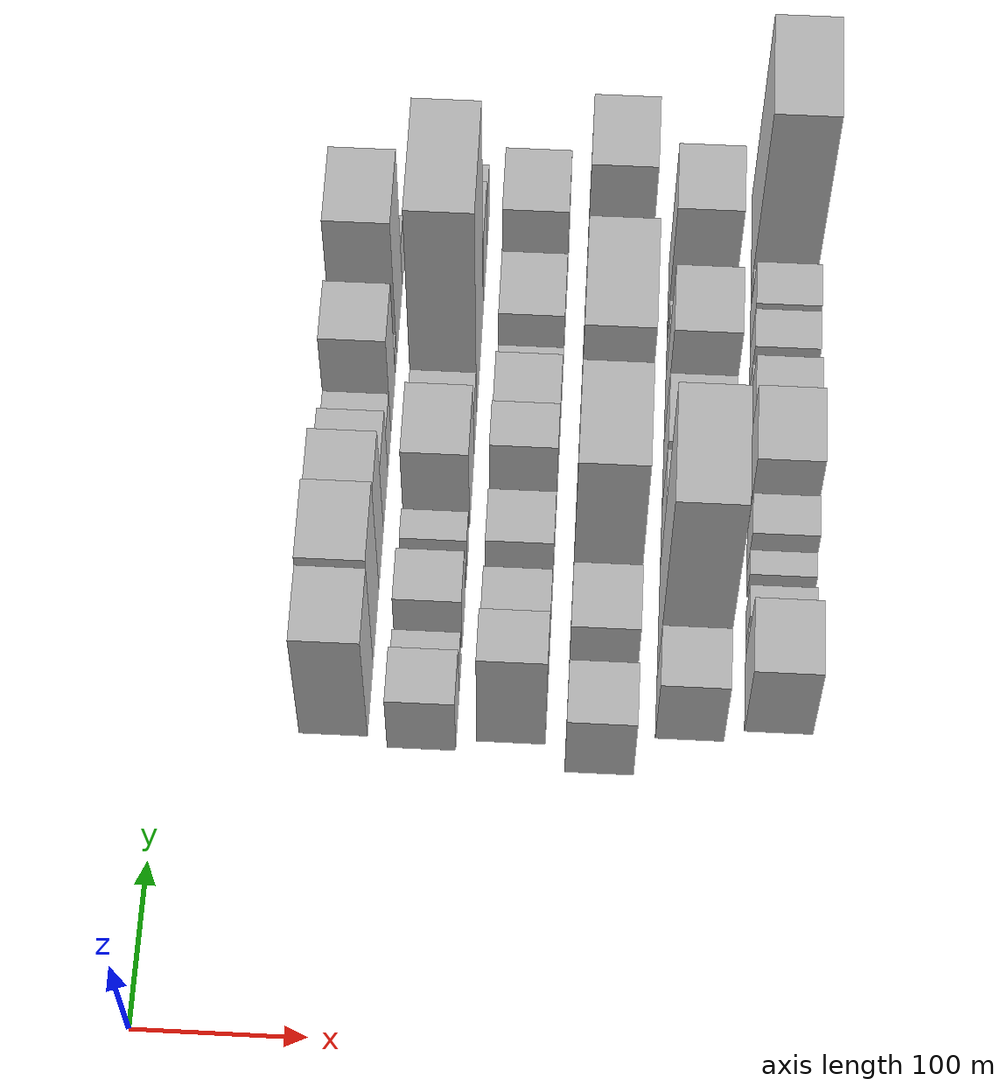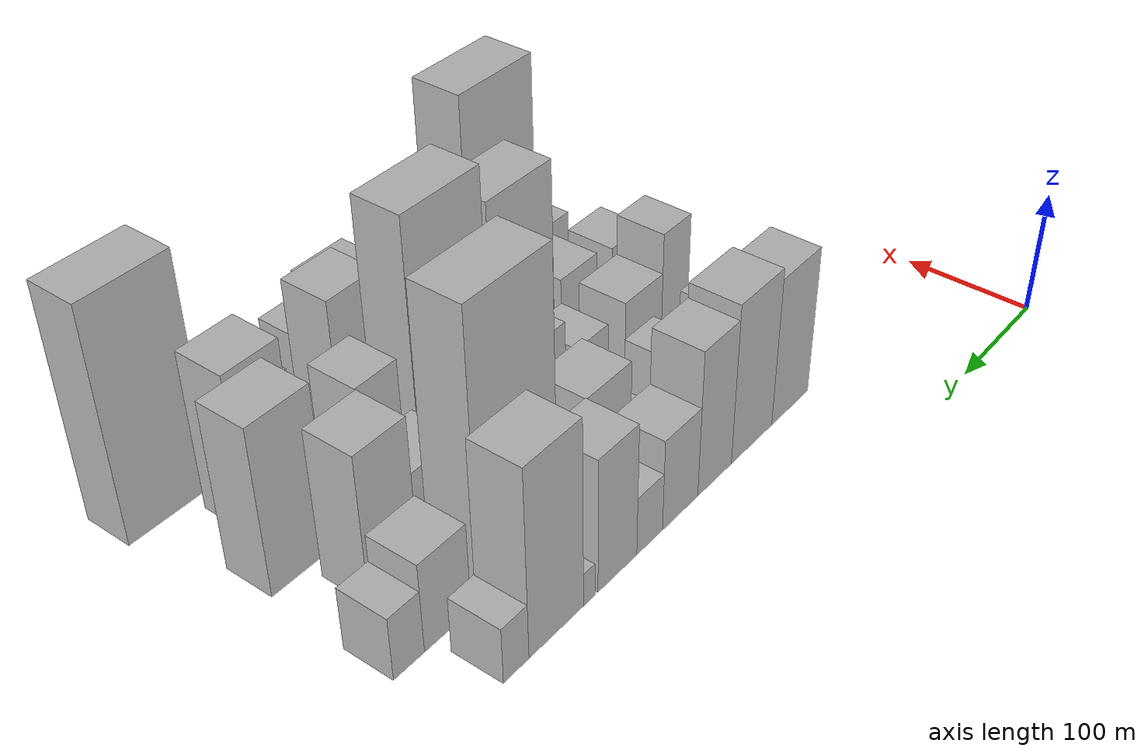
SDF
<sdf version="1.6">
 <world name="default">
  <model name="building_29">
   <static>1</static>
   <pose>100.0000 208.4547 0 0.000000 0.000000 0.000000</pose>
   <link name="link">
    <pose>0 0 61.50 0 0 0</pose>
    <collision name="collision"><geometry><box><size>40.0000 46.8915 123.0000</size></box></geometry></collision>
    <visual name="visual">
     <cast_shadows>0</cast_shadows>
     <geometry><box><size>40.0000 46.8915 123.0000</size></box></geometry>
     <material>
      <script>
       <uri>model://HANNAS_wall/materials/scripts</uri>
       <uri>model://HANNAS_wall/materials/textures</uri>
       <name>vrc/HANNAS_wall</name>
      </script>
     </material>
    </visual>
   </link>
  </model>
  <model name="building_30">
   <static>1</static>
   <pose>100.0000 256.9549 0 0.000000 0.000000 0.000000</pose>
   <link name="link">
    <pose>0 0 66.00 0 0 0</pose>
    <collision name="collision"><geometry><box><size>40.0000 50.1088 132.0000</size></box></geometry></collision>
    <visual name="visual">
     <cast_shadows>0</cast_shadows>
     <geometry><box><size>40.0000 50.1088 132.0000</size></box></geometry>
     <material>
      <script>
       <uri>model://HANNAS_wall/materials/scripts</uri>
       <uri>model://HANNAS_wall/materials/textures</uri>
       <name>vrc/HANNAS_wall</name>
      </script>
     </material>
    </visual>
   </link>
  </model>
  <model name="building_31">
   <static>1</static>
   <pose>100.0000 301.8490 0 0.000000 0.000000 0.000000</pose>
   <link name="link">
    <pose>0 0 60.00 0 0 0</pose>
    <collision name="collision"><geometry><box><size>40.0000 39.6795 120.0000</size></box></geometry></collision>
    <visual name="visual">
     <cast_shadows>0</cast_shadows>
     <geometry><box><size>40.0000 39.6795 120.0000</size></box></geometry>
     <material>
      <script>
       <uri>model://HANNAS_wall/materials/scripts</uri>
       <uri>model://HANNAS_wall/materials/textures</uri>
       <name>vrc/HANNAS_wall</name>
      </script>
     </material>
    </visual>
   </link>
  </model>
  <model name="building_32">
   <static>1</static>
   <pose>100.0000 341.5199 0 0.000000 0.000000 0.000000</pose>
   <link name="link">
    <pose>0 0 37.50 0 0 0</pose>
    <collision name="collision"><geometry><box><size>40.0000 39.6623 75.0000</size></box></geometry></collision>
    <visual name="visual">
     <cast_shadows>0</cast_shadows>
     <geometry><box><size>40.0000 39.6623 75.0000</size></box></geometry>
     <material>
      <script>
       <uri>model://HANNAS_wall/materials/scripts</uri>
       <uri>model://HANNAS_wall/materials/textures</uri>
       <name>vrc/HANNAS_wall</name>
      </script>
     </material>
    </visual>
   </link>
  </model>
  <model name="building_33">
   <static>1</static>
   <pose>100.0000 375.2627 0 0.000000 0.000000 0.000000</pose>
   <link name="link">
    <pose>0 0 24.00 0 0 0</pose>
    <collision name="collision"><geometry><box><size>40.0000 27.8233 48.0000</size></box></geometry></collision>
    <visual name="visual">
     <cast_shadows>0</cast_shadows>
     <geometry><box><size>40.0000 27.8233 48.0000</size></box></geometry>
     <material>
      <script>
       <uri>model://HANNAS_wall/materials/scripts</uri>
       <uri>model://HANNAS_wall/materials/textures</uri>
       <name>vrc/HANNAS_wall</name>
      </script>
     </material>
    </visual>
   </link>
  </model>
  <model name="building_34">
   <static>1</static>
   <pose>100.0000 409.2734 0 0.000000 0.000000 0.000000</pose>
   <link name="link">
    <pose>0 0 54.00 0 0 0</pose>
    <collision name="collision"><geometry><box><size>40.0000 40.1979 108.0000</size></box></geometry></collision>
    <visual name="visual">
     <cast_shadows>0</cast_shadows>
     <geometry><box><size>40.0000 40.1979 108.0000</size></box></geometry>
     <material>
      <script>
       <uri>model://HANNAS_wall/materials/scripts</uri>
       <uri>model://HANNAS_wall/materials/textures</uri>
       <name>vrc/HANNAS_wall</name>
      </script>
     </material>
    </visual>
   </link>
  </model>
  <model name="building_35">
   <static>1</static>
   <pose>100.0000 438.1028 0 0.000000 0.000000 0.000000</pose>
   <link name="link">
    <pose>0 0 13.50 0 0 0</pose>
    <collision name="collision"><geometry><box><size>40.0000 11.4611 27.0000</size></box></geometry></collision>
    <visual name="visual">
     <cast_shadows>0</cast_shadows>
     <geometry><box><size>40.0000 11.4611 27.0000</size></box></geometry>
     <material>
      <script>
       <uri>model://HANNAS_wall/materials/scripts</uri>
       <uri>model://HANNAS_wall/materials/textures</uri>
       <name>vrc/HANNAS_wall</name>
      </script>
     </material>
    </visual>
   </link>
  </model>
  <model name="building_36">
   <static>1</static>
   <pose>100.0000 470.0060 0 0.000000 0.000000 0.000000</pose>
   <link name="link">
    <pose>0 0 75.00 0 0 0</pose>
    <collision name="collision"><geometry><box><size>40.0000 52.3452 150.0000</size></box></geometry></collision>
    <visual name="visual">
     <cast_shadows>0</cast_shadows>
     <geometry><box><size>40.0000 52.3452 150.0000</size></box></geometry>
     <material>
      <script>
       <uri>model://HANNAS_wall/materials/scripts</uri>
       <uri>model://HANNAS_wall/materials/textures</uri>
       <name>vrc/HANNAS_wall</name>
      </script>
     </material>
    </visual>
   </link>
  </model>
  <model name="building_37">
   <static>1</static>
   <pose>100.0000 507.8916 0 0.000000 0.000000 0.000000</pose>
   <link name="link">
    <pose>0 0 22.50 0 0 0</pose>
    <collision name="collision"><geometry><box><size>40.0000 23.4261 45.0000</size></box></geometry></collision>
    <visual name="visual">
     <cast_shadows>0</cast_shadows>
     <geometry><box><size>40.0000 23.4261 45.0000</size></box></geometry>
     <material>
      <script>
       <uri>model://HANNAS_wall/materials/scripts</uri>
       <uri>model://HANNAS_wall/materials/textures</uri>
       <name>vrc/HANNAS_wall</name>
      </script>
     </material>
    </visual>
   </link>
  </model>
  <model name="building_78">
   <static>1</static>
   <pose>152.0000 195.8026 0 0.000000 0.000000 0.000000</pose>
   <link name="link">
    <pose>0 0 31.50 0 0 0</pose>
    <collision name="collision"><geometry><box><size>40.0000 34.5670 63.0000</size></box></geometry></collision>
    <visual name="visual">
     <cast_shadows>0</cast_shadows>
     <geometry><box><size>40.0000 34.5670 63.0000</size></box></geometry>
     <material>
      <script>
       <uri>model://HANNAS_wall/materials/scripts</uri>
       <uri>model://HANNAS_wall/materials/textures</uri>
       <name>vrc/HANNAS_wall</name>
      </script>
     </material>
    </visual>
   </link>
  </model>
  <model name="building_79">
   <static>1</static>
   <pose>152.0000 224.5980 0 0.000000 0.000000 0.000000</pose>
   <link name="link">
    <pose>0 0 19.50 0 0 0</pose>
    <collision name="collision"><geometry><box><size>40.0000 23.0237 39.0000</size></box></geometry></collision>
    <visual name="visual">
     <cast_shadows>0</cast_shadows>
     <geometry><box><size>40.0000 23.0237 39.0000</size></box></geometry>
     <material>
      <script>
       <uri>model://HANNAS_wall/materials/scripts</uri>
       <uri>model://HANNAS_wall/materials/textures</uri>
       <name>vrc/HANNAS_wall</name>
      </script>
     </material>
    </visual>
   </link>
  </model>
  <model name="building_80">
   <static>1</static>
   <pose>152.0000 261.7956 0 0.000000 0.000000 0.000000</pose>
   <link name="link">
    <pose>0 0 30.00 0 0 0</pose>
    <collision name="collision"><geometry><box><size>40.0000 33.3714 60.0000</size></box></geometry></collision>
    <visual name="visual">
     <cast_shadows>0</cast_shadows>
     <geometry><box><size>40.0000 33.3714 60.0000</size></box></geometry>
     <material>
      <script>
       <uri>model://HANNAS_wall/materials/scripts</uri>
       <uri>model://HANNAS_wall/materials/textures</uri>
       <name>vrc/HANNAS_wall</name>
      </script>
     </material>
    </visual>
   </link>
  </model>
  <model name="building_81">
   <static>1</static>
   <pose>152.0000 289.0990 0 0.000000 0.000000 0.000000</pose>
   <link name="link">
    <pose>0 0 10.50 0 0 0</pose>
    <collision name="collision"><geometry><box><size>40.0000 9.2353 21.0000</size></box></geometry></collision>
    <visual name="visual">
     <cast_shadows>0</cast_shadows>
     <geometry><box><size>40.0000 9.2353 21.0000</size></box></geometry>
     <material>
      <script>
       <uri>model://HANNAS_wall/materials/scripts</uri>
       <uri>model://HANNAS_wall/materials/textures</uri>
       <name>vrc/HANNAS_wall</name>
      </script>
     </material>
    </visual>
   </link>
  </model>
  <model name="building_82">
   <static>1</static>
   <pose>152.0000 307.6373 0 0.000000 0.000000 0.000000</pose>
   <link name="link">
    <pose>0 0 18.00 0 0 0</pose>
    <collision name="collision"><geometry><box><size>40.0000 19.8414 36.0000</size></box></geometry></collision>
    <visual name="visual">
     <cast_shadows>0</cast_shadows>
     <geometry><box><size>40.0000 19.8414 36.0000</size></box></geometry>
     <material>
      <script>
       <uri>model://HANNAS_wall/materials/scripts</uri>
       <uri>model://HANNAS_wall/materials/textures</uri>
       <name>vrc/HANNAS_wall</name>
      </script>
     </material>
    </visual>
   </link>
  </model>
  <model name="building_83">
   <static>1</static>
   <pose>152.0000 349.2257 0 0.000000 0.000000 0.000000</pose>
   <link name="link">
    <pose>0 0 45.00 0 0 0</pose>
    <collision name="collision"><geometry><box><size>40.0000 47.3353 90.0000</size></box></geometry></collision>
    <visual name="visual">
     <cast_shadows>0</cast_shadows>
     <geometry><box><size>40.0000 47.3353 90.0000</size></box></geometry>
     <material>
      <script>
       <uri>model://HANNAS_wall/materials/scripts</uri>
       <uri>model://HANNAS_wall/materials/textures</uri>
       <name>vrc/HANNAS_wall</name>
      </script>
     </material>
    </visual>
   </link>
  </model>
  <model name="building_84">
   <static>1</static>
   <pose>152.0000 388.0478 0 0.000000 0.000000 0.000000</pose>
   <link name="link">
    <pose>0 0 27.00 0 0 0</pose>
    <collision name="collision"><geometry><box><size>40.0000 30.3090 54.0000</size></box></geometry></collision>
    <visual name="visual">
     <cast_shadows>0</cast_shadows>
     <geometry><box><size>40.0000 30.3090 54.0000</size></box></geometry>
     <material>
      <script>
       <uri>model://HANNAS_wall/materials/scripts</uri>
       <uri>model://HANNAS_wall/materials/textures</uri>
       <name>vrc/HANNAS_wall</name>
      </script>
     </material>
    </visual>
   </link>
  </model>
  <model name="building_85">
   <static>1</static>
   <pose>152.0000 441.4528 0 0.000000 0.000000 0.000000</pose>
   <link name="link">
    <pose>0 0 112.50 0 0 0</pose>
    <collision name="collision"><geometry><box><size>40.0000 76.5010 225.0000</size></box></geometry></collision>
    <visual name="visual">
     <cast_shadows>0</cast_shadows>
     <geometry><box><size>40.0000 76.5010 225.0000</size></box></geometry>
     <material>
      <script>
       <uri>model://HANNAS_wall/materials/scripts</uri>
       <uri>model://HANNAS_wall/materials/textures</uri>
       <name>vrc/HANNAS_wall</name>
      </script>
     </material>
    </visual>
   </link>
  </model>
  <model name="building_86">
   <static>1</static>
   <pose>152.0000 508.6793 0 0.000000 0.000000 0.000000</pose>
   <link name="link">
    <pose>0 0 36.00 0 0 0</pose>
    <collision name="collision"><geometry><box><size>40.0000 41.9520 72.0000</size></box></geometry></collision>
    <visual name="visual">
     <cast_shadows>0</cast_shadows>
     <geometry><box><size>40.0000 41.9520 72.0000</size></box></geometry>
     <material>
      <script>
       <uri>model://HANNAS_wall/materials/scripts</uri>
       <uri>model://HANNAS_wall/materials/textures</uri>
       <name>vrc/HANNAS_wall</name>
      </script>
     </material>
    </visual>
   </link>
  </model>
  <model name="building_87">
   <static>1</static>
   <pose>152.0000 543.0569 0 0.000000 0.000000 0.000000</pose>
   <link name="link">
    <pose>0 0 25.50 0 0 0</pose>
    <collision name="collision"><geometry><box><size>40.0000 26.8033 51.0000</size></box></geometry></collision>
    <visual name="visual">
     <cast_shadows>0</cast_shadows>
     <geometry><box><size>40.0000 26.8033 51.0000</size></box></geometry>
     <material>
      <script>
       <uri>model://HANNAS_wall/materials/scripts</uri>
       <uri>model://HANNAS_wall/materials/textures</uri>
       <name>vrc/HANNAS_wall</name>
      </script>
     </material>
    </visual>
   </link>
  </model>
  <model name="building_130">
   <static>1</static>
   <pose>204.0000 201.4827 0 0.000000 0.000000 0.000000</pose>
   <link name="link">
    <pose>0 0 54.00 0 0 0</pose>
    <collision name="collision"><geometry><box><size>40.0000 32.6587 108.0000</size></box></geometry></collision>
    <visual name="visual">
     <cast_shadows>0</cast_shadows>
     <geometry><box><size>40.0000 32.6587 108.0000</size></box></geometry>
     <material>
      <script>
       <uri>model://HANNAS_wall/materials/scripts</uri>
       <uri>model://HANNAS_wall/materials/textures</uri>
       <name>vrc/HANNAS_wall</name>
      </script>
     </material>
    </visual>
   </link>
  </model>
  <model name="building_131">
   <static>1</static>
   <pose>204.0000 239.6755 0 0.000000 0.000000 0.000000</pose>
   <link name="link">
    <pose>0 0 37.50 0 0 0</pose>
    <collision name="collision"><geometry><box><size>40.0000 43.7267 75.0000</size></box></geometry></collision>
    <visual name="visual">
     <cast_shadows>0</cast_shadows>
     <geometry><box><size>40.0000 43.7267 75.0000</size></box></geometry>
     <material>
      <script>
       <uri>model://HANNAS_wall/materials/scripts</uri>
       <uri>model://HANNAS_wall/materials/textures</uri>
       <name>vrc/HANNAS_wall</name>
      </script>
     </material>
    </visual>
   </link>
  </model>
  <model name="building_132">
   <static>1</static>
   <pose>204.0000 273.3717 0 0.000000 0.000000 0.000000</pose>
   <link name="link">
    <pose>0 0 15.00 0 0 0</pose>
    <collision name="collision"><geometry><box><size>40.0000 15.6657 30.0000</size></box></geometry></collision>
    <visual name="visual">
     <cast_shadows>0</cast_shadows>
     <geometry><box><size>40.0000 15.6657 30.0000</size></box></geometry>
     <material>
      <script>
       <uri>model://HANNAS_wall/materials/scripts</uri>
       <uri>model://HANNAS_wall/materials/textures</uri>
       <name>vrc/HANNAS_wall</name>
      </script>
     </material>
    </visual>
   </link>
  </model>
  <model name="building_133">
   <static>1</static>
   <pose>204.0000 298.4647 0 0.000000 0.000000 0.000000</pose>
   <link name="link">
    <pose>0 0 34.50 0 0 0</pose>
    <collision name="collision"><geometry><box><size>40.0000 34.5203 69.0000</size></box></geometry></collision>
    <visual name="visual">
     <cast_shadows>0</cast_shadows>
     <geometry><box><size>40.0000 34.5203 69.0000</size></box></geometry>
     <material>
      <script>
       <uri>model://HANNAS_wall/materials/scripts</uri>
       <uri>model://HANNAS_wall/materials/textures</uri>
       <name>vrc/HANNAS_wall</name>
      </script>
     </material>
    </visual>
   </link>
  </model>
  <model name="building_134">
   <static>1</static>
   <pose>204.0000 319.7799 0 0.000000 0.000000 0.000000</pose>
   <link name="link">
    <pose>0 0 9.00 0 0 0</pose>
    <collision name="collision"><geometry><box><size>40.0000 8.1100 18.0000</size></box></geometry></collision>
    <visual name="visual">
     <cast_shadows>0</cast_shadows>
     <geometry><box><size>40.0000 8.1100 18.0000</size></box></geometry>
     <material>
      <script>
       <uri>model://HANNAS_wall/materials/scripts</uri>
       <uri>model://HANNAS_wall/materials/textures</uri>
       <name>vrc/HANNAS_wall</name>
      </script>
     </material>
    </visual>
   </link>
  </model>
  <model name="building_135">
   <static>1</static>
   <pose>204.0000 342.7902 0 0.000000 0.000000 0.000000</pose>
   <link name="link">
    <pose>0 0 49.50 0 0 0</pose>
    <collision name="collision"><geometry><box><size>40.0000 29.9105 99.0000</size></box></geometry></collision>
    <visual name="visual">
     <cast_shadows>0</cast_shadows>
     <geometry><box><size>40.0000 29.9105 99.0000</size></box></geometry>
     <material>
      <script>
       <uri>model://HANNAS_wall/materials/scripts</uri>
       <uri>model://HANNAS_wall/materials/textures</uri>
       <name>vrc/HANNAS_wall</name>
      </script>
     </material>
    </visual>
   </link>
  </model>
  <model name="building_136">
   <static>1</static>
   <pose>204.0000 380.8406 0 0.000000 0.000000 0.000000</pose>
   <link name="link">
    <pose>0 0 39.00 0 0 0</pose>
    <collision name="collision"><geometry><box><size>40.0000 46.1903 78.0000</size></box></geometry></collision>
    <visual name="visual">
     <cast_shadows>0</cast_shadows>
     <geometry><box><size>40.0000 46.1903 78.0000</size></box></geometry>
     <material>
      <script>
       <uri>model://HANNAS_wall/materials/scripts</uri>
       <uri>model://HANNAS_wall/materials/textures</uri>
       <name>vrc/HANNAS_wall</name>
      </script>
     </material>
    </visual>
   </link>
  </model>
  <model name="building_137">
   <static>1</static>
   <pose>204.0000 422.7419 0 0.000000 0.000000 0.000000</pose>
   <link name="link">
    <pose>0 0 19.50 0 0 0</pose>
    <collision name="collision"><geometry><box><size>40.0000 19.6123 39.0000</size></box></geometry></collision>
    <visual name="visual">
     <cast_shadows>0</cast_shadows>
     <geometry><box><size>40.0000 19.6123 39.0000</size></box></geometry>
     <material>
      <script>
       <uri>model://HANNAS_wall/materials/scripts</uri>
       <uri>model://HANNAS_wall/materials/textures</uri>
       <name>vrc/HANNAS_wall</name>
      </script>
     </material>
    </visual>
   </link>
  </model>
  <model name="building_138">
   <static>1</static>
   <pose>204.0000 454.8895 0 0.000000 0.000000 0.000000</pose>
   <link name="link">
    <pose>0 0 37.50 0 0 0</pose>
    <collision name="collision"><geometry><box><size>40.0000 44.6828 75.0000</size></box></geometry></collision>
    <visual name="visual">
     <cast_shadows>0</cast_shadows>
     <geometry><box><size>40.0000 44.6828 75.0000</size></box></geometry>
     <material>
      <script>
       <uri>model://HANNAS_wall/materials/scripts</uri>
       <uri>model://HANNAS_wall/materials/textures</uri>
       <name>vrc/HANNAS_wall</name>
      </script>
     </material>
    </visual>
   </link>
  </model>
  <model name="building_139">
   <static>1</static>
   <pose>204.0000 499.5380 0 0.000000 0.000000 0.000000</pose>
   <link name="link">
    <pose>0 0 60.00 0 0 0</pose>
    <collision name="collision"><geometry><box><size>40.0000 44.6142 120.0000</size></box></geometry></collision>
    <visual name="visual">
     <cast_shadows>0</cast_shadows>
     <geometry><box><size>40.0000 44.6142 120.0000</size></box></geometry>
     <material>
      <script>
       <uri>model://HANNAS_wall/materials/scripts</uri>
       <uri>model://HANNAS_wall/materials/textures</uri>
       <name>vrc/HANNAS_wall</name>
      </script>
     </material>
    </visual>
   </link>
  </model>
  <model name="building_176">
   <static>1</static>
   <pose>256.0000 187.8354 0 0.000000 0.000000 0.000000</pose>
   <link name="link">
    <pose>0 0 34.50 0 0 0</pose>
    <collision name="collision"><geometry><box><size>40.0000 39.1867 69.0000</size></box></geometry></collision>
    <visual name="visual">
     <cast_shadows>0</cast_shadows>
     <geometry><box><size>40.0000 39.1867 69.0000</size></box></geometry>
     <material>
      <script>
       <uri>model://HANNAS_wall/materials/scripts</uri>
       <uri>model://HANNAS_wall/materials/textures</uri>
       <name>vrc/HANNAS_wall</name>
      </script>
     </material>
    </visual>
   </link>
  </model>
  <model name="building_177">
   <static>1</static>
   <pose>256.0000 216.4188 0 0.000000 0.000000 0.000000</pose>
   <link name="link">
    <pose>0 0 13.50 0 0 0</pose>
    <collision name="collision"><geometry><box><size>40.0000 11.9801 27.0000</size></box></geometry></collision>
    <visual name="visual">
     <cast_shadows>0</cast_shadows>
     <geometry><box><size>40.0000 11.9801 27.0000</size></box></geometry>
     <material>
      <script>
       <uri>model://HANNAS_wall/materials/scripts</uri>
       <uri>model://HANNAS_wall/materials/textures</uri>
       <name>vrc/HANNAS_wall</name>
      </script>
     </material>
    </visual>
   </link>
  </model>
  <model name="building_178">
   <static>1</static>
   <pose>256.0000 246.1983 0 0.000000 0.000000 0.000000</pose>
   <link name="link">
    <pose>0 0 37.50 0 0 0</pose>
    <collision name="collision"><geometry><box><size>40.0000 41.5788 75.0000</size></box></geometry></collision>
    <visual name="visual">
     <cast_shadows>0</cast_shadows>
     <geometry><box><size>40.0000 41.5788 75.0000</size></box></geometry>
     <material>
      <script>
       <uri>model://HANNAS_wall/materials/scripts</uri>
       <uri>model://HANNAS_wall/materials/textures</uri>
       <name>vrc/HANNAS_wall</name>
      </script>
     </material>
    </visual>
   </link>
  </model>
  <model name="building_179">
   <static>1</static>
   <pose>256.0000 308.0925 0 0.000000 0.000000 0.000000</pose>
   <link name="link">
    <pose>0 0 88.50 0 0 0</pose>
    <collision name="collision"><geometry><box><size>40.0000 66.2096 177.0000</size></box></geometry></collision>
    <visual name="visual">
     <cast_shadows>0</cast_shadows>
     <geometry><box><size>40.0000 66.2096 177.0000</size></box></geometry>
     <material>
      <script>
       <uri>model://HANNAS_wall/materials/scripts</uri>
       <uri>model://HANNAS_wall/materials/textures</uri>
       <name>vrc/HANNAS_wall</name>
      </script>
     </material>
    </visual>
   </link>
  </model>
  <model name="building_180">
   <static>1</static>
   <pose>256.0000 381.2448 0 0.000000 0.000000 0.000000</pose>
   <link name="link">
    <pose>0 0 103.50 0 0 0</pose>
    <collision name="collision"><geometry><box><size>40.0000 72.0952 207.0000</size></box></geometry></collision>
    <visual name="visual">
     <cast_shadows>0</cast_shadows>
     <geometry><box><size>40.0000 72.0952 207.0000</size></box></geometry>
     <material>
      <script>
       <uri>model://HANNAS_wall/materials/scripts</uri>
       <uri>model://HANNAS_wall/materials/textures</uri>
       <name>vrc/HANNAS_wall</name>
      </script>
     </material>
    </visual>
   </link>
  </model>
  <model name="building_181">
   <static>1</static>
   <pose>256.0000 420.8644 0 0.000000 0.000000 0.000000</pose>
   <link name="link">
    <pose>0 0 7.50 0 0 0</pose>
    <collision name="collision"><geometry><box><size>40.0000 7.1439 15.0000</size></box></geometry></collision>
    <visual name="visual">
     <cast_shadows>0</cast_shadows>
     <geometry><box><size>40.0000 7.1439 15.0000</size></box></geometry>
     <material>
      <script>
       <uri>model://HANNAS_wall/materials/scripts</uri>
       <uri>model://HANNAS_wall/materials/textures</uri>
       <name>vrc/HANNAS_wall</name>
      </script>
     </material>
    </visual>
   </link>
  </model>
  <model name="building_182">
   <static>1</static>
   <pose>256.0000 448.9622 0 0.000000 0.000000 0.000000</pose>
   <link name="link">
    <pose>0 0 54.00 0 0 0</pose>
    <collision name="collision"><geometry><box><size>40.0000 37.0516 108.0000</size></box></geometry></collision>
    <visual name="visual">
     <cast_shadows>0</cast_shadows>
     <geometry><box><size>40.0000 37.0516 108.0000</size></box></geometry>
     <material>
      <script>
       <uri>model://HANNAS_wall/materials/scripts</uri>
       <uri>model://HANNAS_wall/materials/textures</uri>
       <name>vrc/HANNAS_wall</name>
      </script>
     </material>
    </visual>
   </link>
  </model>
  <model name="building_183">
   <static>1</static>
   <pose>256.0000 480.4068 0 0.000000 0.000000 0.000000</pose>
   <link name="link">
    <pose>0 0 22.50 0 0 0</pose>
    <collision name="collision"><geometry><box><size>40.0000 25.8377 45.0000</size></box></geometry></collision>
    <visual name="visual">
     <cast_shadows>0</cast_shadows>
     <geometry><box><size>40.0000 25.8377 45.0000</size></box></geometry>
     <material>
      <script>
       <uri>model://HANNAS_wall/materials/scripts</uri>
       <uri>model://HANNAS_wall/materials/textures</uri>
       <name>vrc/HANNAS_wall</name>
      </script>
     </material>
    </visual>
   </link>
  </model>
  <model name="building_184">
   <static>1</static>
   <pose>256.0000 497.6136 0 0.000000 0.000000 0.000000</pose>
   <link name="link">
    <pose>0 0 10.50 0 0 0</pose>
    <collision name="collision"><geometry><box><size>40.0000 8.5759 21.0000</size></box></geometry></collision>
    <visual name="visual">
     <cast_shadows>0</cast_shadows>
     <geometry><box><size>40.0000 8.5759 21.0000</size></box></geometry>
     <material>
      <script>
       <uri>model://HANNAS_wall/materials/scripts</uri>
       <uri>model://HANNAS_wall/materials/textures</uri>
       <name>vrc/HANNAS_wall</name>
      </script>
     </material>
    </visual>
   </link>
  </model>
  <model name="building_185">
   <static>1</static>
   <pose>256.0000 527.4973 0 0.000000 0.000000 0.000000</pose>
   <link name="link">
    <pose>0 0 67.50 0 0 0</pose>
    <collision name="collision"><geometry><box><size>40.0000 51.1914 135.0000</size></box></geometry></collision>
    <visual name="visual">
     <cast_shadows>0</cast_shadows>
     <geometry><box><size>40.0000 51.1914 135.0000</size></box></geometry>
     <material>
      <script>
       <uri>model://HANNAS_wall/materials/scripts</uri>
       <uri>model://HANNAS_wall/materials/textures</uri>
       <name>vrc/HANNAS_wall</name>
      </script>
     </material>
    </visual>
   </link>
  </model>
  <model name="building_228">
   <static>1</static>
   <pose>308.0000 211.3479 0 0.000000 0.000000 0.000000</pose>
   <link name="link">
    <pose>0 0 36.00 0 0 0</pose>
    <collision name="collision"><geometry><box><size>40.0000 38.1008 72.0000</size></box></geometry></collision>
    <visual name="visual">
     <cast_shadows>0</cast_shadows>
     <geometry><box><size>40.0000 38.1008 72.0000</size></box></geometry>
     <material>
      <script>
       <uri>model://HANNAS_wall/materials/scripts</uri>
       <uri>model://HANNAS_wall/materials/textures</uri>
       <name>vrc/HANNAS_wall</name>
      </script>
     </material>
    </visual>
   </link>
  </model>
  <model name="building_229">
   <static>1</static>
   <pose>308.0000 267.2762 0 0.000000 0.000000 0.000000</pose>
   <link name="link">
    <pose>0 0 109.50 0 0 0</pose>
    <collision name="collision"><geometry><box><size>40.0000 73.7558 219.0000</size></box></geometry></collision>
    <visual name="visual">
     <cast_shadows>0</cast_shadows>
     <geometry><box><size>40.0000 73.7558 219.0000</size></box></geometry>
     <material>
      <script>
       <uri>model://HANNAS_wall/materials/scripts</uri>
       <uri>model://HANNAS_wall/materials/textures</uri>
       <name>vrc/HANNAS_wall</name>
      </script>
     </material>
    </visual>
   </link>
  </model>
  <model name="building_230">
   <static>1</static>
   <pose>308.0000 324.2044 0 0.000000 0.000000 0.000000</pose>
   <link name="link">
    <pose>0 0 37.50 0 0 0</pose>
    <collision name="collision"><geometry><box><size>40.0000 40.1005 75.0000</size></box></geometry></collision>
    <visual name="visual">
     <cast_shadows>0</cast_shadows>
     <geometry><box><size>40.0000 40.1005 75.0000</size></box></geometry>
     <material>
      <script>
       <uri>model://HANNAS_wall/materials/scripts</uri>
       <uri>model://HANNAS_wall/materials/textures</uri>
       <name>vrc/HANNAS_wall</name>
      </script>
     </material>
    </visual>
   </link>
  </model>
  <model name="building_231">
   <static>1</static>
   <pose>308.0000 367.5551 0 0.000000 0.000000 0.000000</pose>
   <link name="link">
    <pose>0 0 42.00 0 0 0</pose>
    <collision name="collision"><geometry><box><size>40.0000 46.6009 84.0000</size></box></geometry></collision>
    <visual name="visual">
     <cast_shadows>0</cast_shadows>
     <geometry><box><size>40.0000 46.6009 84.0000</size></box></geometry>
     <material>
      <script>
       <uri>model://HANNAS_wall/materials/scripts</uri>
       <uri>model://HANNAS_wall/materials/textures</uri>
       <name>vrc/HANNAS_wall</name>
      </script>
     </material>
    </visual>
   </link>
  </model>
  <model name="building_232">
   <static>1</static>
   <pose>308.0000 413.4163 0 0.000000 0.000000 0.000000</pose>
   <link name="link">
    <pose>0 0 66.00 0 0 0</pose>
    <collision name="collision"><geometry><box><size>40.0000 45.1215 132.0000</size></box></geometry></collision>
    <visual name="visual">
     <cast_shadows>0</cast_shadows>
     <geometry><box><size>40.0000 45.1215 132.0000</size></box></geometry>
     <material>
      <script>
       <uri>model://HANNAS_wall/materials/scripts</uri>
       <uri>model://HANNAS_wall/materials/textures</uri>
       <name>vrc/HANNAS_wall</name>
      </script>
     </material>
    </visual>
   </link>
  </model>
  <model name="building_233">
   <static>1</static>
   <pose>308.0000 448.1996 0 0.000000 0.000000 0.000000</pose>
   <link name="link">
    <pose>0 0 24.00 0 0 0</pose>
    <collision name="collision"><geometry><box><size>40.0000 24.4451 48.0000</size></box></geometry></collision>
    <visual name="visual">
     <cast_shadows>0</cast_shadows>
     <geometry><box><size>40.0000 24.4451 48.0000</size></box></geometry>
     <material>
      <script>
       <uri>model://HANNAS_wall/materials/scripts</uri>
       <uri>model://HANNAS_wall/materials/textures</uri>
       <name>vrc/HANNAS_wall</name>
      </script>
     </material>
    </visual>
   </link>
  </model>
  <model name="building_234">
   <static>1</static>
   <pose>308.0000 470.8842 0 0.000000 0.000000 0.000000</pose>
   <link name="link">
    <pose>0 0 13.50 0 0 0</pose>
    <collision name="collision"><geometry><box><size>40.0000 12.9240 27.0000</size></box></geometry></collision>
    <visual name="visual">
     <cast_shadows>0</cast_shadows>
     <geometry><box><size>40.0000 12.9240 27.0000</size></box></geometry>
     <material>
      <script>
       <uri>model://HANNAS_wall/materials/scripts</uri>
       <uri>model://HANNAS_wall/materials/textures</uri>
       <name>vrc/HANNAS_wall</name>
      </script>
     </material>
    </visual>
   </link>
  </model>
  <model name="building_235">
   <static>1</static>
   <pose>308.0000 500.7142 0 0.000000 0.000000 0.000000</pose>
   <link name="link">
    <pose>0 0 64.50 0 0 0</pose>
    <collision name="collision"><geometry><box><size>40.0000 46.7360 129.0000</size></box></geometry></collision>
    <visual name="visual">
     <cast_shadows>0</cast_shadows>
     <geometry><box><size>40.0000 46.7360 129.0000</size></box></geometry>
     <material>
      <script>
       <uri>model://HANNAS_wall/materials/scripts</uri>
       <uri>model://HANNAS_wall/materials/textures</uri>
       <name>vrc/HANNAS_wall</name>
      </script>
     </material>
    </visual>
   </link>
  </model>
  <model name="building_277">
   <static>1</static>
   <pose>360.0000 222.8682 0 0.000000 0.000000 0.000000</pose>
   <link name="link">
    <pose>0 0 40.50 0 0 0</pose>
    <collision name="collision"><geometry><box><size>40.0000 46.8770 81.0000</size></box></geometry></collision>
    <visual name="visual">
     <cast_shadows>0</cast_shadows>
     <geometry><box><size>40.0000 46.8770 81.0000</size></box></geometry>
     <material>
      <script>
       <uri>model://HANNAS_wall/materials/scripts</uri>
       <uri>model://HANNAS_wall/materials/textures</uri>
       <name>vrc/HANNAS_wall</name>
      </script>
     </material>
    </visual>
   </link>
  </model>
  <model name="building_278">
   <static>1</static>
   <pose>360.0000 251.4140 0 0.000000 0.000000 0.000000</pose>
   <link name="link">
    <pose>0 0 10.50 0 0 0</pose>
    <collision name="collision"><geometry><box><size>40.0000 10.2146 21.0000</size></box></geometry></collision>
    <visual name="visual">
     <cast_shadows>0</cast_shadows>
     <geometry><box><size>40.0000 10.2146 21.0000</size></box></geometry>
     <material>
      <script>
       <uri>model://HANNAS_wall/materials/scripts</uri>
       <uri>model://HANNAS_wall/materials/textures</uri>
       <name>vrc/HANNAS_wall</name>
      </script>
     </material>
    </visual>
   </link>
  </model>
  <model name="building_279">
   <static>1</static>
   <pose>360.0000 266.9635 0 0.000000 0.000000 0.000000</pose>
   <link name="link">
    <pose>0 0 18.00 0 0 0</pose>
    <collision name="collision"><geometry><box><size>40.0000 20.8846 36.0000</size></box></geometry></collision>
    <visual name="visual">
     <cast_shadows>0</cast_shadows>
     <geometry><box><size>40.0000 20.8846 36.0000</size></box></geometry>
     <material>
      <script>
       <uri>model://HANNAS_wall/materials/scripts</uri>
       <uri>model://HANNAS_wall/materials/textures</uri>
       <name>vrc/HANNAS_wall</name>
      </script>
     </material>
    </visual>
   </link>
  </model>
  <model name="building_280">
   <static>1</static>
   <pose>360.0000 295.5773 0 0.000000 0.000000 0.000000</pose>
   <link name="link">
    <pose>0 0 15.00 0 0 0</pose>
    <collision name="collision"><geometry><box><size>40.0000 16.3430 30.0000</size></box></geometry></collision>
    <visual name="visual">
     <cast_shadows>0</cast_shadows>
     <geometry><box><size>40.0000 16.3430 30.0000</size></box></geometry>
     <material>
      <script>
       <uri>model://HANNAS_wall/materials/scripts</uri>
       <uri>model://HANNAS_wall/materials/textures</uri>
       <name>vrc/HANNAS_wall</name>
      </script>
     </material>
    </visual>
   </link>
  </model>
  <model name="building_281">
   <static>1</static>
   <pose>360.0000 317.1688 0 0.000000 0.000000 0.000000</pose>
   <link name="link">
    <pose>0 0 25.50 0 0 0</pose>
    <collision name="collision"><geometry><box><size>40.0000 26.8401 51.0000</size></box></geometry></collision>
    <visual name="visual">
     <cast_shadows>0</cast_shadows>
     <geometry><box><size>40.0000 26.8401 51.0000</size></box></geometry>
     <material>
      <script>
       <uri>model://HANNAS_wall/materials/scripts</uri>
       <uri>model://HANNAS_wall/materials/textures</uri>
       <name>vrc/HANNAS_wall</name>
      </script>
     </material>
    </visual>
   </link>
  </model>
  <model name="building_282">
   <static>1</static>
   <pose>360.0000 358.5119 0 0.000000 0.000000 0.000000</pose>
   <link name="link">
    <pose>0 0 43.50 0 0 0</pose>
    <collision name="collision"><geometry><box><size>40.0000 49.8460 87.0000</size></box></geometry></collision>
    <visual name="visual">
     <cast_shadows>0</cast_shadows>
     <geometry><box><size>40.0000 49.8460 87.0000</size></box></geometry>
     <material>
      <script>
       <uri>model://HANNAS_wall/materials/scripts</uri>
       <uri>model://HANNAS_wall/materials/textures</uri>
       <name>vrc/HANNAS_wall</name>
      </script>
     </material>
    </visual>
   </link>
  </model>
  <model name="building_283">
   <static>1</static>
   <pose>360.0000 400.1894 0 0.000000 0.000000 0.000000</pose>
   <link name="link">
    <pose>0 0 33.00 0 0 0</pose>
    <collision name="collision"><geometry><box><size>40.0000 33.5090 66.0000</size></box></geometry></collision>
    <visual name="visual">
     <cast_shadows>0</cast_shadows>
     <geometry><box><size>40.0000 33.5090 66.0000</size></box></geometry>
     <material>
      <script>
       <uri>model://HANNAS_wall/materials/scripts</uri>
       <uri>model://HANNAS_wall/materials/textures</uri>
       <name>vrc/HANNAS_wall</name>
      </script>
     </material>
    </visual>
   </link>
  </model>
  <model name="building_284">
   <static>1</static>
   <pose>360.0000 424.5072 0 0.000000 0.000000 0.000000</pose>
   <link name="link">
    <pose>0 0 15.00 0 0 0</pose>
    <collision name="collision"><geometry><box><size>40.0000 15.1266 30.0000</size></box></geometry></collision>
    <visual name="visual">
     <cast_shadows>0</cast_shadows>
     <geometry><box><size>40.0000 15.1266 30.0000</size></box></geometry>
     <material>
      <script>
       <uri>model://HANNAS_wall/materials/scripts</uri>
       <uri>model://HANNAS_wall/materials/textures</uri>
       <name>vrc/HANNAS_wall</name>
      </script>
     </material>
    </visual>
   </link>
  </model>
  <model name="building_285">
   <static>1</static>
   <pose>360.0000 445.5824 0 0.000000 0.000000 0.000000</pose>
   <link name="link">
    <pose>0 0 25.50 0 0 0</pose>
    <collision name="collision"><geometry><box><size>40.0000 27.0239 51.0000</size></box></geometry></collision>
    <visual name="visual">
     <cast_shadows>0</cast_shadows>
     <geometry><box><size>40.0000 27.0239 51.0000</size></box></geometry>
     <material>
      <script>
       <uri>model://HANNAS_wall/materials/scripts</uri>
       <uri>model://HANNAS_wall/materials/textures</uri>
       <name>vrc/HANNAS_wall</name>
      </script>
     </material>
    </visual>
   </link>
  </model>
  <model name="building_286">
   <static>1</static>
   <pose>360.0000 474.1834 0 0.000000 0.000000 0.000000</pose>
   <link name="link">
    <pose>0 0 28.50 0 0 0</pose>
    <collision name="collision"><geometry><box><size>40.0000 30.1781 57.0000</size></box></geometry></collision>
    <visual name="visual">
     <cast_shadows>0</cast_shadows>
     <geometry><box><size>40.0000 30.1781 57.0000</size></box></geometry>
     <material>
      <script>
       <uri>model://HANNAS_wall/materials/scripts</uri>
       <uri>model://HANNAS_wall/materials/textures</uri>
       <name>vrc/HANNAS_wall</name>
      </script>
     </material>
    </visual>
   </link>
  </model>
  <model name="building_287">
   <static>1</static>
   <pose>360.0000 499.6602 0 0.000000 0.000000 0.000000</pose>
   <link name="link">
    <pose>0 0 12.00 0 0 0</pose>
    <collision name="collision"><geometry><box><size>40.0000 10.7754 24.0000</size></box></geometry></collision>
    <visual name="visual">
     <cast_shadows>0</cast_shadows>
     <geometry><box><size>40.0000 10.7754 24.0000</size></box></geometry>
     <material>
      <script>
       <uri>model://HANNAS_wall/materials/scripts</uri>
       <uri>model://HANNAS_wall/materials/textures</uri>
       <name>vrc/HANNAS_wall</name>
      </script>
     </material>
    </visual>
   </link>
  </model>
  <model name="building_288">
   <static>1</static>
   <pose>360.0000 540.9577 0 0.000000 0.000000 0.000000</pose>
   <link name="link">
    <pose>0 0 94.50 0 0 0</pose>
    <collision name="collision"><geometry><box><size>40.0000 71.8197 189.0000</size></box></geometry></collision>
    <visual name="visual">
     <cast_shadows>0</cast_shadows>
     <geometry><box><size>40.0000 71.8197 189.0000</size></box></geometry>
     <material>
      <script>
       <uri>model://HANNAS_wall/materials/scripts</uri>
       <uri>model://HANNAS_wall/materials/textures</uri>
       <name>vrc/HANNAS_wall</name>
      </script>
     </material>
    </visual>
   </link>
  </model>
 </world>
</sdf>
